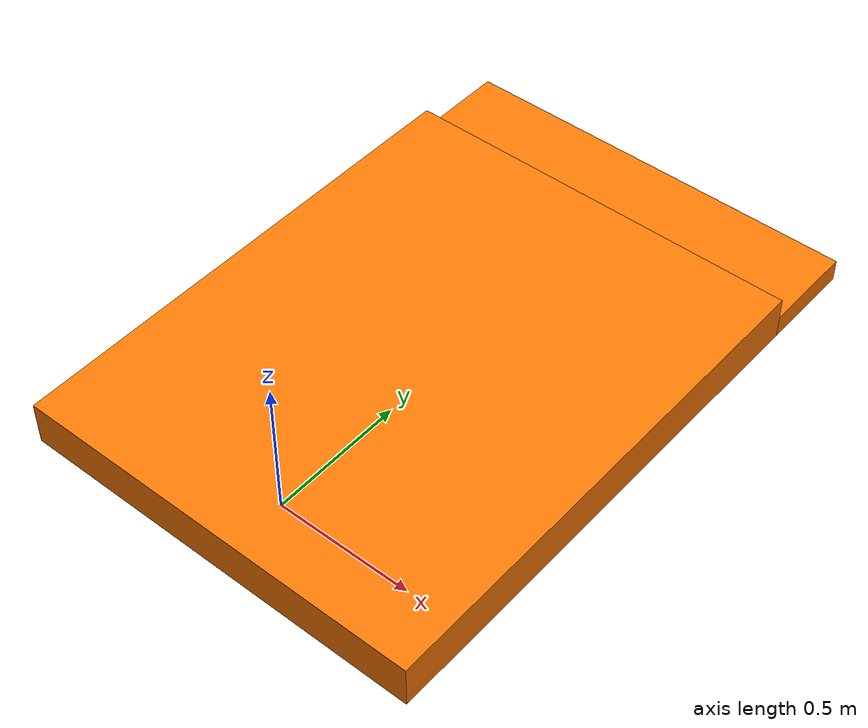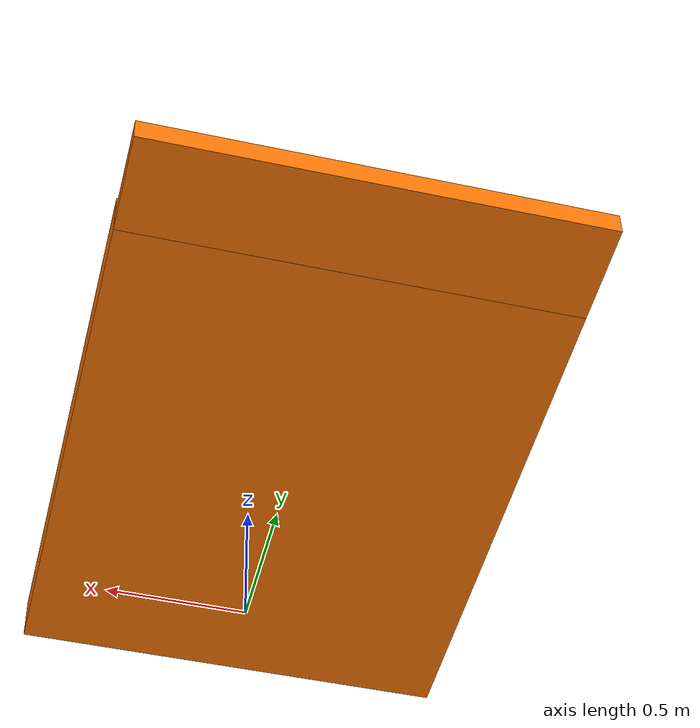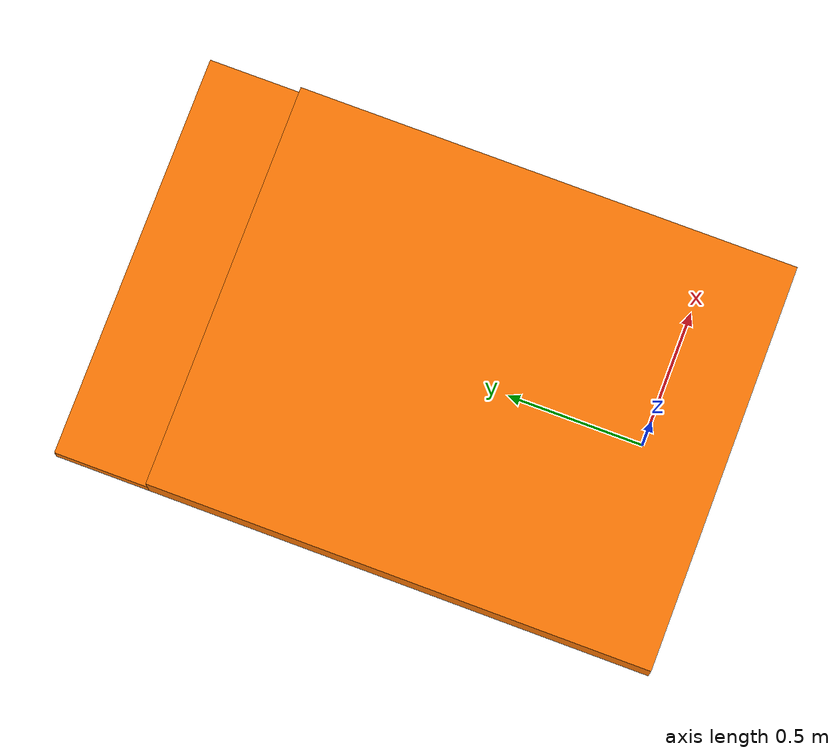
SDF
<?xml version='1.0'?>
<sdf version='1.7'>
  <model name='stair_0.08m_2'>
    <link name='Stairs_4'>
      <self_collide>0</self_collide>
      <enable_wind>0</enable_wind>
      <kinematic>0</kinematic>
      <pose>0 0 0 0 -0 0</pose>
      <gravity>1</gravity>
      <inertial>
        <mass>1</mass>
        <pose>0 0 0 0 -0 0</pose>
        <inertia>
          <ixx>1</ixx>
          <ixy>0</ixy>
          <ixz>0</ixz>
          <iyy>1</iyy>
          <iyz>0</iyz>
          <izz>1</izz>
        </inertia>
      </inertial>
      <visual name='Stairs_4_Visual_1'>
        <pose>0 0.63182 0.08 0 -0 0</pose>
        <geometry>
          <box>
            <size>1.5 1.84545 0.16</size>
          </box>
        </geometry>
        <material>
          <script>
            <uri>file://media/materials/scripts/gazebo.material</uri>
            <name>Gazebo/Grey</name>
          </script>
          <ambient>0.996 0.475 0.02 1</ambient>
          <shader type='pixel'>
            <normal_map>__default__</normal_map>
          </shader>
          <diffuse>0.7 0.7 0.7 1</diffuse>
          <specular>0.01 0.01 0.01 1</specular>
          <emissive>0 0 0 1</emissive>
        </material>
        <meta>
          <layer>0</layer>
        </meta>
        <transparency>0</transparency>
        <cast_shadows>1</cast_shadows>
      </visual>
      <visual name='Stairs_4_Visual_0'>
        <pose>0 1.72727 0.040909 0 -0 0</pose>
        <geometry>
          <box>
            <size>1.5 0.345455 0.081818</size>
          </box>
        </geometry>
        <material>
          <script>
            <uri>file://media/materials/scripts/gazebo.material</uri>
            <name>Gazebo/Grey</name>
          </script>
          <ambient>0.996 0.475 0.02 1</ambient>
          <shader type='pixel'>
            <normal_map>__default__</normal_map>
          </shader>
          <diffuse>0.7 0.7 0.7 1</diffuse>
          <specular>0.01 0.01 0.01 1</specular>
          <emissive>0 0 0 1</emissive>
        </material>
        <meta>
          <layer>0</layer>
        </meta>
        <transparency>0</transparency>
        <cast_shadows>1</cast_shadows>
      </visual>
      <collision name='Stairs_4_Collision_1'>
        <laser_retro>0</laser_retro>
        <max_contacts>10</max_contacts>
        <pose>0 0.63182 0.08 0 -0 0</pose>
        <geometry>
          <box>
            <size>1.5 1.84546 0.16</size>
          </box>
        </geometry>
        <surface>
          <friction>
            <ode>
              <mu>1</mu>
              <mu2>1</mu2>
              <fdir1>0 0 0</fdir1>
              <slip1>0</slip1>
              <slip2>0</slip2>
            </ode>
            <torsional>
              <coefficient>1</coefficient>
              <patch_radius>0</patch_radius>
              <surface_radius>0</surface_radius>
              <use_patch_radius>1</use_patch_radius>
              <ode>
                <slip>0</slip>
              </ode>
            </torsional>
          </friction>
          <bounce>
            <restitution_coefficient>0</restitution_coefficient>
            <threshold>1e+06</threshold>
          </bounce>
          <contact>
            <collide_without_contact>0</collide_without_contact>
            <collide_without_contact_bitmask>1</collide_without_contact_bitmask>
            <collide_bitmask>1</collide_bitmask>
            <ode>
              <soft_cfm>0</soft_cfm>
              <soft_erp>0.2</soft_erp>
              <kp>1e+13</kp>
              <kd>1</kd>
              <max_vel>0.01</max_vel>
              <min_depth>0</min_depth>
            </ode>
            <bullet>
              <split_impulse>1</split_impulse>
              <split_impulse_penetration_threshold>-0.01</split_impulse_penetration_threshold>
              <soft_cfm>0</soft_cfm>
              <soft_erp>0.2</soft_erp>
              <kp>1e+13</kp>
              <kd>1</kd>
            </bullet>
          </contact>
        </surface>
      </collision>
      <collision name='Stairs_4_Collision_0'>
        <laser_retro>0</laser_retro>
        <max_contacts>10</max_contacts>
        <pose>0 1.72727 0.040909 0 -0 0</pose>
        <geometry>
          <box>
            <size>1.5 0.345455 0.081818</size>
          </box>
        </geometry>
        <surface>
          <friction>
            <ode>
              <mu>1</mu>
              <mu2>1</mu2>
              <fdir1>0 0 0</fdir1>
              <slip1>0</slip1>
              <slip2>0</slip2>
            </ode>
            <torsional>
              <coefficient>1</coefficient>
              <patch_radius>0</patch_radius>
              <surface_radius>0</surface_radius>
              <use_patch_radius>1</use_patch_radius>
              <ode>
                <slip>0</slip>
              </ode>
            </torsional>
          </friction>
          <bounce>
            <restitution_coefficient>0</restitution_coefficient>
            <threshold>1e+06</threshold>
          </bounce>
          <contact>
            <collide_without_contact>0</collide_without_contact>
            <collide_without_contact_bitmask>1</collide_without_contact_bitmask>
            <collide_bitmask>1</collide_bitmask>
            <ode>
              <soft_cfm>0</soft_cfm>
              <soft_erp>0.2</soft_erp>
              <kp>1e+13</kp>
              <kd>1</kd>
              <max_vel>0.01</max_vel>
              <min_depth>0</min_depth>
            </ode>
            <bullet>
              <split_impulse>1</split_impulse>
              <split_impulse_penetration_threshold>-0.01</split_impulse_penetration_threshold>
              <soft_cfm>0</soft_cfm>
              <soft_erp>0.2</soft_erp>
              <kp>1e+13</kp>
              <kd>1</kd>
            </bullet>
          </contact>
        </surface>
      </collision>
    </link>
    <static>1</static>
    <allow_auto_disable>1</allow_auto_disable>
  </model>
</sdf>
